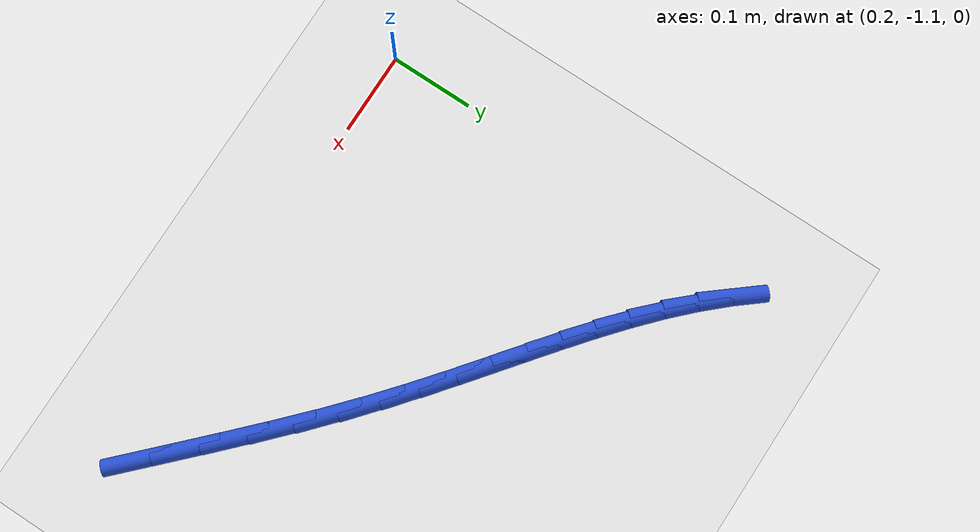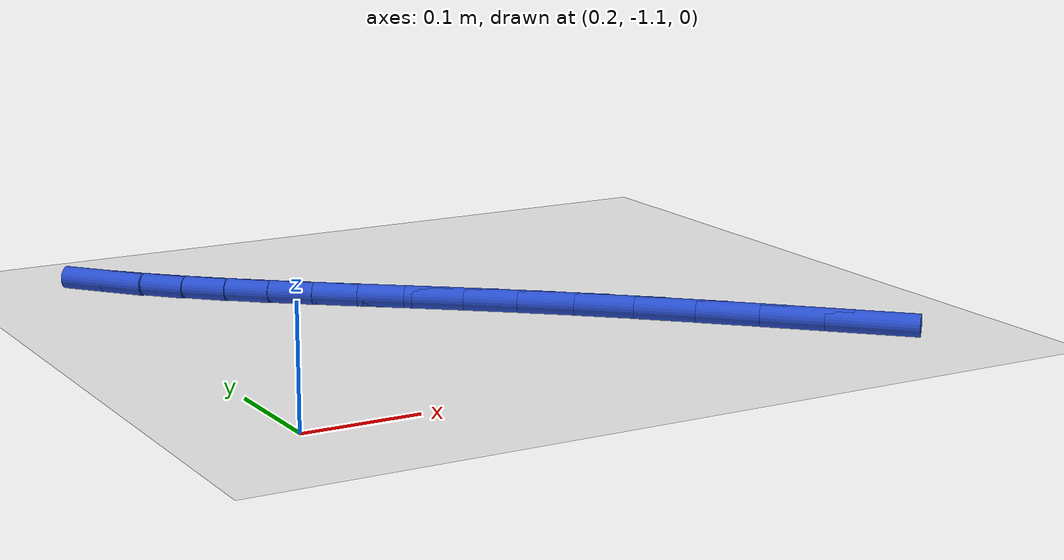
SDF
<sdf version="1.6">
 <world name="default">
  <model name="ground_plane">
   <static>1</static>
   <link name="link">
    <collision name="collision">
     <geometry><plane><normal>0 0 1</normal><size>100 100</size></plane></geometry>
     <surface><friction><ode><mu>100</mu><mu2>50</mu2></ode></friction></surface>
    </collision>
    <visual name="visual">
     <cast_shadows>0</cast_shadows>
     <geometry><plane><normal>0 0 1</normal><size>100 100</size></plane></geometry>
     <material>
      <script><uri>file://media/materials/scripts/gazebo.material</uri><name>Gazebo/WhiteGlow</name></script>
     </material>
    </visual>
   </link>
  </model>
  <model name="line">
   <link name="link_159">
    <pose>0.7402846994204622 -1.0849982969705672 0.01 0 1.57 -0.7692747622686595</pose>
    <collision name="collision">
     <geometry><cylinder><radius>0.01</radius><length>0.08</length></cylinder></geometry>
    </collision>
    <visual name="visual">
     <material>
      <script><name>Gazebo/Blue</name><uri>file://media/materials/scripts/gazebo.material</uri></script>
     </material>
     <geometry><cylinder><radius>0.01</radius><length>0.08</length></cylinder></geometry>
    </visual>
   </link>
   <link name="link_160">
    <pose>0.7004657136527395 -1.0464430794342052 0.01 0 1.57 -0.7668285271247565</pose>
    <collision name="collision">
     <geometry><cylinder><radius>0.01</radius><length>0.08</length></cylinder></geometry>
    </collision>
    <visual name="visual">
     <material>
      <script><name>Gazebo/Blue</name><uri>file://media/materials/scripts/gazebo.material</uri></script>
     </material>
     <geometry><cylinder><radius>0.01</radius><length>0.08</length></cylinder></geometry>
    </visual>
   </link>
   <link name="link_161">
    <pose>0.6608389544005849 -1.008261361406415 0.01 0 1.57 -0.7582137726666657</pose>
    <collision name="collision">
     <geometry><cylinder><radius>0.01</radius><length>0.08</length></cylinder></geometry>
    </collision>
    <visual name="visual">
     <material>
      <script><name>Gazebo/Blue</name><uri>file://media/materials/scripts/gazebo.material</uri></script>
     </material>
     <geometry><cylinder><radius>0.01</radius><length>0.08</length></cylinder></geometry>
    </visual>
   </link>
   <link name="link_162">
    <pose>0.6216141935299145 -0.9711132617864794 0.01 0 1.57 -0.7427786355741397</pose>
    <collision name="collision">
     <geometry><cylinder><radius>0.01</radius><length>0.08</length></cylinder></geometry>
    </collision>
    <visual name="visual">
     <material>
      <script><name>Gazebo/Blue</name><uri>file://media/materials/scripts/gazebo.material</uri></script>
     </material>
     <geometry><cylinder><radius>0.01</radius><length>0.08</length></cylinder></geometry>
    </visual>
   </link>
   <link name="link_163">
    <pose>0.5830012029066454 -0.9356588994736815 0.01 0 1.57 -0.7197409944616011</pose>
    <collision name="collision">
     <geometry><cylinder><radius>0.01</radius><length>0.08</length></cylinder></geometry>
    </collision>
    <visual name="visual">
     <material>
      <script><name>Gazebo/Blue</name><uri>file://media/materials/scripts/gazebo.material</uri></script>
     </material>
     <geometry><cylinder><radius>0.01</radius><length>0.08</length></cylinder></geometry>
    </visual>
   </link>
   <link name="link_164">
    <pose>0.5452045415612556 -0.9025259772851763 0.01 0 1.57 -0.6952331752395841</pose>
    <collision name="collision">
     <geometry><cylinder><radius>0.01</radius><length>0.08</length></cylinder></geometry>
    </collision>
    <visual name="visual">
     <material>
      <script><name>Gazebo/Blue</name><uri>file://media/materials/scripts/gazebo.material</uri></script>
     </material>
     <geometry><cylinder><radius>0.01</radius><length>0.08</length></cylinder></geometry>
    </visual>
   </link>
   <link name="link_165">
    <pose>0.5083371044799317 -0.8717721840365198 0.01 0 1.57 -0.6761128855638605</pose>
    <collision name="collision">
     <geometry><cylinder><radius>0.01</radius><length>0.08</length></cylinder></geometry>
    </collision>
    <visual name="visual">
     <material>
      <script><name>Gazebo/Blue</name><uri>file://media/materials/scripts/gazebo.material</uri></script>
     </material>
     <geometry><cylinder><radius>0.01</radius><length>0.08</length></cylinder></geometry>
    </visual>
   </link>
   <link name="link_166">
    <pose>0.4724335086688988 -0.8429684359494968 0.01 0 1.57 -0.6636799421228728</pose>
    <collision name="collision">
     <geometry><cylinder><radius>0.01</radius><length>0.08</length></cylinder></geometry>
    </collision>
    <visual name="visual">
     <material>
      <script><name>Gazebo/Blue</name><uri>file://media/materials/scripts/gazebo.material</uri></script>
     </material>
     <geometry><cylinder><radius>0.01</radius><length>0.08</length></cylinder></geometry>
    </visual>
   </link>
   <link name="link_167">
    <pose>0.437525856444055 -0.8156700116127727 0.01 0 1.57 -0.6589619492117522</pose>
    <collision name="collision">
     <geometry><cylinder><radius>0.01</radius><length>0.08</length></cylinder></geometry>
    </collision>
    <visual name="visual">
     <material>
      <script><name>Gazebo/Blue</name><uri>file://media/materials/scripts/gazebo.material</uri></script>
     </material>
     <geometry><cylinder><radius>0.01</radius><length>0.08</length></cylinder></geometry>
    </visual>
   </link>
   <link name="link_168">
    <pose>0.4036462501213009 -0.7894321896150157 0.01 0 1.57 -0.6628573880750754</pose>
    <collision name="collision">
     <geometry><cylinder><radius>0.01</radius><length>0.08</length></cylinder></geometry>
    </collision>
    <visual name="visual">
     <material>
      <script><name>Gazebo/Blue</name><uri>file://media/materials/scripts/gazebo.material</uri></script>
     </material>
     <geometry><cylinder><radius>0.01</radius><length>0.08</length></cylinder></geometry>
    </visual>
   </link>
   <link name="link_169">
    <pose>0.3708267920165361 -0.7638102485448924 0.01 0 1.57 -0.6760659245275916</pose>
    <collision name="collision">
     <geometry><cylinder><radius>0.01</radius><length>0.08</length></cylinder></geometry>
    </collision>
    <visual name="visual">
     <material>
      <script><name>Gazebo/Blue</name><uri>file://media/materials/scripts/gazebo.material</uri></script>
     </material>
     <geometry><cylinder><radius>0.01</radius><length>0.08</length></cylinder></geometry>
    </visual>
   </link>
   <link name="link_170">
    <pose>0.33909958444566063 -0.7383594669910705 0.01 0 1.57 -0.6990035334842908</pose>
    <collision name="collision">
     <geometry><cylinder><radius>0.01</radius><length>0.08</length></cylinder></geometry>
    </collision>
    <visual name="visual">
     <material>
      <script><name>Gazebo/Blue</name><uri>file://media/materials/scripts/gazebo.material</uri></script>
     </material>
     <geometry><cylinder><radius>0.01</radius><length>0.08</length></cylinder></geometry>
    </visual>
   </link>
   <link name="link_171">
    <pose>0.3084967297245739 -0.7126351235422163 0.01 0 1.57 -0.7317045170775054</pose>
    <collision name="collision">
     <geometry><cylinder><radius>0.01</radius><length>0.08</length></cylinder></geometry>
    </collision>
    <visual name="visual">
     <material>
      <script><name>Gazebo/Blue</name><uri>file://media/materials/scripts/gazebo.material</uri></script>
     </material>
     <geometry><cylinder><radius>0.01</radius><length>0.08</length></cylinder></geometry>
    </visual>
   </link>
   <link name="link_172">
    <pose>0.2790503301691765 -0.6861924967869976 0.01 0 1.57 -0.7737236124221542</pose>
    <collision name="collision">
     <geometry><cylinder><radius>0.01</radius><length>0.08</length></cylinder></geometry>
    </collision>
    <visual name="visual">
     <material>
      <script><name>Gazebo/Blue</name><uri>file://media/materials/scripts/gazebo.material</uri></script>
     </material>
     <geometry><cylinder><radius>0.01</radius><length>0.08</length></cylinder></geometry>
    </visual>
   </link>
   <link name="link_173">
    <pose>0.2507924880953668 -0.6585868653140805 0.01 0 1.57 -0.8240660697208123</pose>
    <collision name="collision">
     <geometry><cylinder><radius>0.01</radius><length>0.08</length></cylinder></geometry>
    </collision>
    <visual name="visual">
     <material>
      <script><name>Gazebo/Blue</name><uri>file://media/materials/scripts/gazebo.material</uri></script>
     </material>
     <geometry><cylinder><radius>0.01</radius><length>0.08</length></cylinder></geometry>
    </visual>
   </link>
   <link name="link_174">
    <pose>0.2237553058190452 -0.6293735077121323 0.01 0 1.57 -0.8809561223124411</pose>
    <collision name="collision">
     <geometry><cylinder><radius>0.01</radius><length>0.08</length></cylinder></geometry>
    </collision>
    <visual name="visual">
     <material>
      <script><name>Gazebo/Blue</name><uri>file://media/materials/scripts/gazebo.material</uri></script>
     </material>
     <geometry><cylinder><radius>0.01</radius><length>0.08</length></cylinder></geometry>
    </visual>
   </link>
  </model>
 </world>
</sdf>
